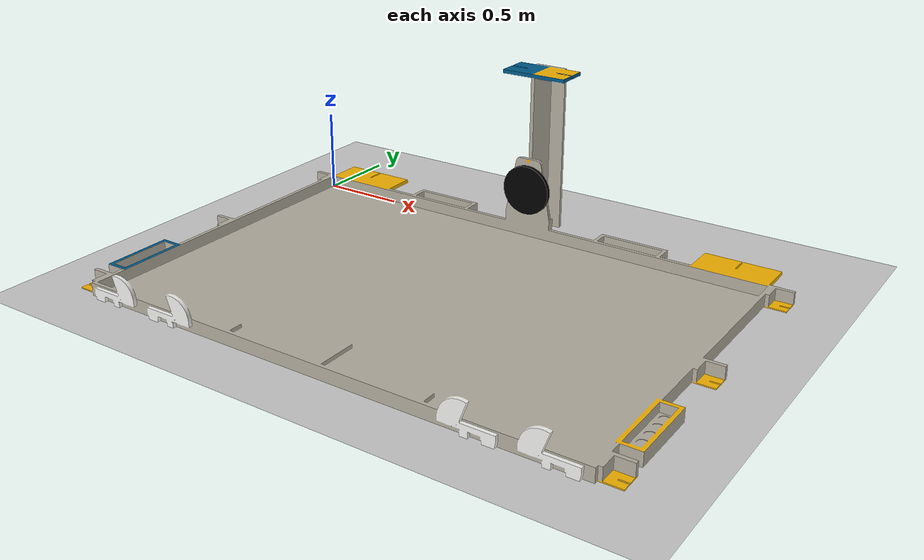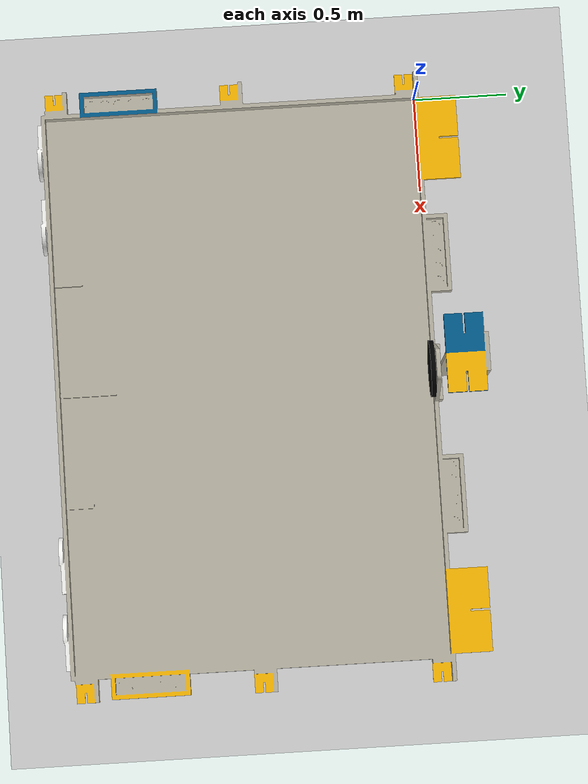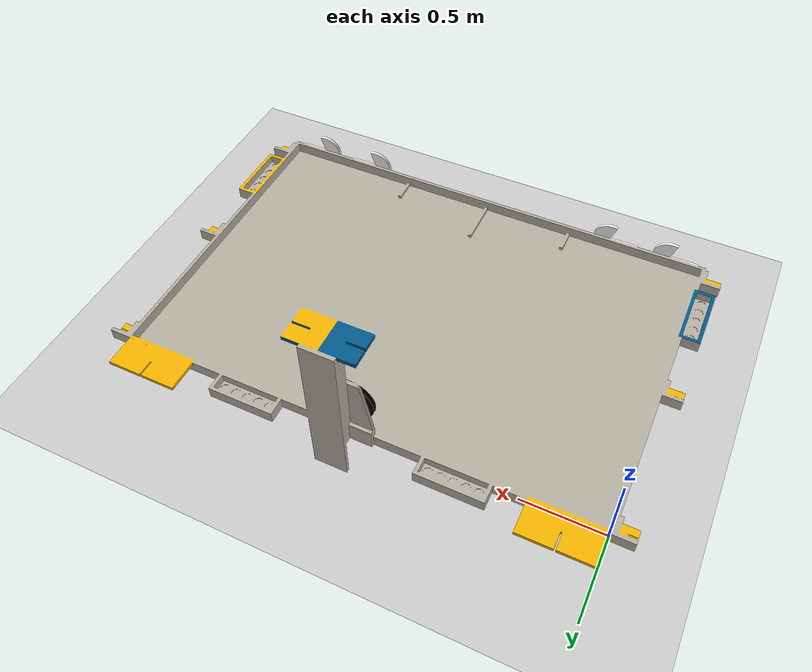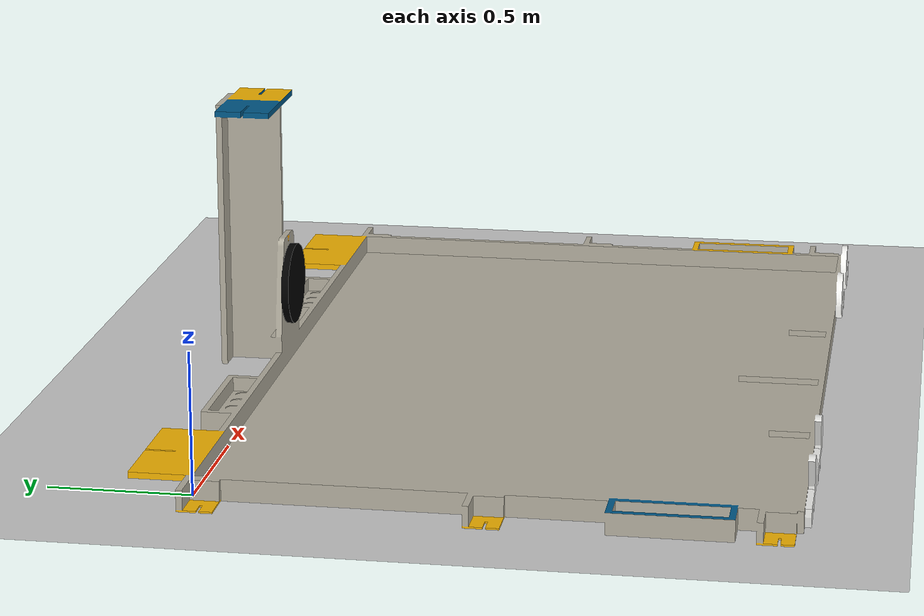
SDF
<?xml version="1.0"?>
<sdf version="1.4">
  <world name="default">
    <include>
      <uri>model://ground_plane</uri>
    </include>
    <include>
      <uri>model://sun</uri>
    </include>
    <model name="table">
      <pose>0 0 -0.020  0 0 0</pose>
      <static>true</static>
      <link name="body">
        <visual name="visual">
          <geometry>
            <mesh><uri>file://meshes/table.dae</uri></mesh>
          </geometry>
        </visual>
      </link>
    </model>
  </world>
</sdf>
